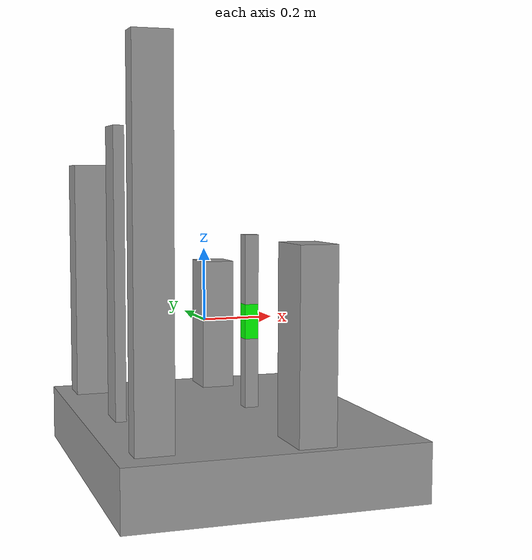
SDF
<?xml version='1.0'?>
<sdf version='1.6'>
  <model name='ur5_camera_scence2'>
    <link name='link_0'>
      <pose frame=''>0.044444 -0.013333 -0.343333 0 -0 0</pose>
      <inertial>
        <mass>1</mass>
        <inertia>
          <ixx>0.166667</ixx>
          <ixy>0</ixy>
          <ixz>0</ixz>
          <iyy>0.166667</iyy>
          <iyz>0</iyz>
          <izz>0.166667</izz>
        </inertia>
        <pose frame=''>0 0 0 0 -0 0</pose>
      </inertial>
      <gravity>1</gravity>
      <self_collide>0</self_collide>
      <kinematic>0</kinematic>
      <visual name='visual'>
        <pose frame=''>0 0 0 0 -0 0</pose>
        <geometry>
          <box>
            <size>0.8 1 0.16</size>
          </box>
        </geometry>
        <material>
          <lighting>1</lighting>
          <script>
            <uri>file://media/materials/scripts/gazebo.material</uri>
            <name>Gazebo/Grey</name>
          </script>
          <ambient>0.3 0.3 0.3 1</ambient>
          <diffuse>0.7 0.7 0.7 1</diffuse>
          <specular>0.01 0.01 0.01 1</specular>
          <emissive>0 0 0 1</emissive>
          <shader type='vertex'>
            <normal_map>__default__</normal_map>
          </shader>
        </material>
        <cast_shadows>1</cast_shadows>
        <transparency>0</transparency>
      </visual>
      <collision name='collision'>
        <laser_retro>0</laser_retro>
        <max_contacts>10</max_contacts>
        <pose frame=''>0 0 0 0 -0 0</pose>
        <geometry>
          <box>
            <size>0.8 1 0.16</size>
          </box>
        </geometry>
        <surface>
          <friction>
            <ode>
              <mu>1</mu>
              <mu2>1</mu2>
              <fdir1>0 0 0</fdir1>
              <slip1>0</slip1>
              <slip2>0</slip2>
            </ode>
            <torsional>
              <coefficient>1</coefficient>
              <patch_radius>0</patch_radius>
              <surface_radius>0</surface_radius>
              <use_patch_radius>1</use_patch_radius>
              <ode>
                <slip>0</slip>
              </ode>
            </torsional>
          </friction>
          <bounce>
            <restitution_coefficient>0</restitution_coefficient>
            <threshold>1e+06</threshold>
          </bounce>
          <contact>
            <collide_without_contact>0</collide_without_contact>
            <collide_without_contact_bitmask>1</collide_without_contact_bitmask>
            <collide_bitmask>1</collide_bitmask>
            <ode>
              <soft_cfm>0</soft_cfm>
              <soft_erp>0.2</soft_erp>
              <kp>1e+13</kp>
              <kd>1</kd>
              <max_vel>0.01</max_vel>
              <min_depth>0</min_depth>
            </ode>
            <bullet>
              <split_impulse>1</split_impulse>
              <split_impulse_penetration_threshold>-0.01</split_impulse_penetration_threshold>
              <soft_cfm>0</soft_cfm>
              <soft_erp>0.2</soft_erp>
              <kp>1e+13</kp>
              <kd>1</kd>
            </bullet>
          </contact>
        </surface>
      </collision>
    </link>
    <link name='link_1'>
      <pose frame=''>-0.255556 -0.413333 0.236667 0 -0 0</pose>
      <inertial>
        <mass>1</mass>
        <inertia>
          <ixx>0.166667</ixx>
          <ixy>0</ixy>
          <ixz>0</ixz>
          <iyy>0.166667</iyy>
          <iyz>0</iyz>
          <izz>0.166667</izz>
        </inertia>
        <pose frame=''>0 0 0 0 -0 0</pose>
      </inertial>
      <gravity>1</gravity>
      <self_collide>0</self_collide>
      <kinematic>0</kinematic>
      <visual name='visual'>
        <pose frame=''>0 0 0 0 -0 0</pose>
        <geometry>
          <box>
            <size>0.1 0.06 1</size>
          </box>
        </geometry>
        <material>
          <lighting>1</lighting>
          <script>
            <uri>file://media/materials/scripts/gazebo.material</uri>
            <name>Gazebo/Grey</name>
          </script>
          <ambient>0.3 0.3 0.3 1</ambient>
          <diffuse>0.7 0.7 0.7 1</diffuse>
          <specular>0.01 0.01 0.01 1</specular>
          <emissive>0 0 0 1</emissive>
          <shader type='vertex'>
            <normal_map>__default__</normal_map>
          </shader>
        </material>
        <cast_shadows>1</cast_shadows>
        <transparency>0</transparency>
      </visual>
      <collision name='collision'>
        <laser_retro>0</laser_retro>
        <max_contacts>10</max_contacts>
        <pose frame=''>0 0 0 0 -0 0</pose>
        <geometry>
          <box>
            <size>0.1 0.06 1</size>
          </box>
        </geometry>
        <surface>
          <friction>
            <ode>
              <mu>1</mu>
              <mu2>1</mu2>
              <fdir1>0 0 0</fdir1>
              <slip1>0</slip1>
              <slip2>0</slip2>
            </ode>
            <torsional>
              <coefficient>1</coefficient>
              <patch_radius>0</patch_radius>
              <surface_radius>0</surface_radius>
              <use_patch_radius>1</use_patch_radius>
              <ode>
                <slip>0</slip>
              </ode>
            </torsional>
          </friction>
          <bounce>
            <restitution_coefficient>0</restitution_coefficient>
            <threshold>1e+06</threshold>
          </bounce>
          <contact>
            <collide_without_contact>0</collide_without_contact>
            <collide_without_contact_bitmask>1</collide_without_contact_bitmask>
            <collide_bitmask>1</collide_bitmask>
            <ode>
              <soft_cfm>0</soft_cfm>
              <soft_erp>0.2</soft_erp>
              <kp>1e+13</kp>
              <kd>1</kd>
              <max_vel>0.01</max_vel>
              <min_depth>0</min_depth>
            </ode>
            <bullet>
              <split_impulse>1</split_impulse>
              <split_impulse_penetration_threshold>-0.01</split_impulse_penetration_threshold>
              <soft_cfm>0</soft_cfm>
              <soft_erp>0.2</soft_erp>
              <kp>1e+13</kp>
              <kd>1</kd>
            </bullet>
          </contact>
        </surface>
      </collision>
    </link>
    <link name='link_2'>
      <pose frame=''>-0.255556 -0.013333 0.136667 0 -0 0</pose>
      <inertial>
        <mass>1</mass>
        <inertia>
          <ixx>0.166667</ixx>
          <ixy>0</ixy>
          <ixz>0</ixz>
          <iyy>0.166667</iyy>
          <iyz>0</iyz>
          <izz>0.166667</izz>
        </inertia>
        <pose frame=''>0 0 0 0 -0 0</pose>
      </inertial>
      <gravity>1</gravity>
      <self_collide>0</self_collide>
      <kinematic>0</kinematic>
      <visual name='visual'>
        <pose frame=''>0 0 0 0 -0 0</pose>
        <geometry>
          <box>
            <size>0.03 0.1 0.8</size>
          </box>
        </geometry>
        <material>
          <lighting>1</lighting>
          <script>
            <uri>file://media/materials/scripts/gazebo.material</uri>
            <name>Gazebo/Grey</name>
          </script>
          <ambient>0.3 0.3 0.3 1</ambient>
          <diffuse>0.7 0.7 0.7 1</diffuse>
          <specular>0.01 0.01 0.01 1</specular>
          <emissive>0 0 0 1</emissive>
          <shader type='vertex'>
            <normal_map>__default__</normal_map>
          </shader>
        </material>
        <cast_shadows>1</cast_shadows>
        <transparency>0</transparency>
      </visual>
      <collision name='collision'>
        <laser_retro>0</laser_retro>
        <max_contacts>10</max_contacts>
        <pose frame=''>0 0 0 0 -0 0</pose>
        <geometry>
          <box>
            <size>0.03 0.1 0.8</size>
          </box>
        </geometry>
        <surface>
          <friction>
            <ode>
              <mu>1</mu>
              <mu2>1</mu2>
              <fdir1>0 0 0</fdir1>
              <slip1>0</slip1>
              <slip2>0</slip2>
            </ode>
            <torsional>
              <coefficient>1</coefficient>
              <patch_radius>0</patch_radius>
              <surface_radius>0</surface_radius>
              <use_patch_radius>1</use_patch_radius>
              <ode>
                <slip>0</slip>
              </ode>
            </torsional>
          </friction>
          <bounce>
            <restitution_coefficient>0</restitution_coefficient>
            <threshold>1e+06</threshold>
          </bounce>
          <contact>
            <collide_without_contact>0</collide_without_contact>
            <collide_without_contact_bitmask>1</collide_without_contact_bitmask>
            <collide_bitmask>1</collide_bitmask>
            <ode>
              <soft_cfm>0</soft_cfm>
              <soft_erp>0.2</soft_erp>
              <kp>1e+13</kp>
              <kd>1</kd>
              <max_vel>0.01</max_vel>
              <min_depth>0</min_depth>
            </ode>
            <bullet>
              <split_impulse>1</split_impulse>
              <split_impulse_penetration_threshold>-0.01</split_impulse_penetration_threshold>
              <soft_cfm>0</soft_cfm>
              <soft_erp>0.2</soft_erp>
              <kp>1e+13</kp>
              <kd>1</kd>
            </bullet>
          </contact>
        </surface>
      </collision>
    </link>
    <link name='link_3'>
      <pose frame=''>-0.255556 0.386667 0.086667 0 -0 0</pose>
      <inertial>
        <mass>1</mass>
        <inertia>
          <ixx>0.166667</ixx>
          <ixy>0</ixy>
          <ixz>0</ixz>
          <iyy>0.166667</iyy>
          <iyz>0</iyz>
          <izz>0.166667</izz>
        </inertia>
        <pose frame=''>0 0 0 0 -0 0</pose>
      </inertial>
      <gravity>1</gravity>
      <self_collide>0</self_collide>
      <kinematic>0</kinematic>
      <visual name='visual'>
        <pose frame=''>0 0 0 0 -0 0</pose>
        <geometry>
          <box>
            <size>0.1 0.1 0.7</size>
          </box>
        </geometry>
        <material>
          <lighting>1</lighting>
          <script>
            <uri>file://media/materials/scripts/gazebo.material</uri>
            <name>Gazebo/Grey</name>
          </script>
          <ambient>0.3 0.3 0.3 1</ambient>
          <diffuse>0.7 0.7 0.7 1</diffuse>
          <specular>0.01 0.01 0.01 1</specular>
          <emissive>0 0 0 1</emissive>
          <shader type='vertex'>
            <normal_map>__default__</normal_map>
          </shader>
        </material>
        <cast_shadows>1</cast_shadows>
        <transparency>0</transparency>
      </visual>
      <collision name='collision'>
        <laser_retro>0</laser_retro>
        <max_contacts>10</max_contacts>
        <pose frame=''>0 0 0 0 -0 0</pose>
        <geometry>
          <box>
            <size>0.1 0.1 0.7</size>
          </box>
        </geometry>
        <surface>
          <friction>
            <ode>
              <mu>1</mu>
              <mu2>1</mu2>
              <fdir1>0 0 0</fdir1>
              <slip1>0</slip1>
              <slip2>0</slip2>
            </ode>
            <torsional>
              <coefficient>1</coefficient>
              <patch_radius>0</patch_radius>
              <surface_radius>0</surface_radius>
              <use_patch_radius>1</use_patch_radius>
              <ode>
                <slip>0</slip>
              </ode>
            </torsional>
          </friction>
          <bounce>
            <restitution_coefficient>0</restitution_coefficient>
            <threshold>1e+06</threshold>
          </bounce>
          <contact>
            <collide_without_contact>0</collide_without_contact>
            <collide_without_contact_bitmask>1</collide_without_contact_bitmask>
            <collide_bitmask>1</collide_bitmask>
            <ode>
              <soft_cfm>0</soft_cfm>
              <soft_erp>0.2</soft_erp>
              <kp>1e+13</kp>
              <kd>1</kd>
              <max_vel>0.01</max_vel>
              <min_depth>0</min_depth>
            </ode>
            <bullet>
              <split_impulse>1</split_impulse>
              <split_impulse_penetration_threshold>-0.01</split_impulse_penetration_threshold>
              <soft_cfm>0</soft_cfm>
              <soft_erp>0.2</soft_erp>
              <kp>1e+13</kp>
              <kd>1</kd>
            </bullet>
          </contact>
        </surface>
      </collision>
    </link>
    <link name='link_4'>
      <pose frame=''>0.144444 -0.413333 -0.013333 0 -0 0</pose>
      <inertial>
        <mass>1</mass>
        <inertia>
          <ixx>0.166667</ixx>
          <ixy>0</ixy>
          <ixz>0</ixz>
          <iyy>0.166667</iyy>
          <iyz>0</iyz>
          <izz>0.166667</izz>
        </inertia>
        <pose frame=''>0 0 0 0 -0 0</pose>
      </inertial>
      <gravity>1</gravity>
      <self_collide>0</self_collide>
      <kinematic>0</kinematic>
      <visual name='visual'>
        <pose frame=''>0 0 0 0 -0 0</pose>
        <geometry>
          <box>
            <size>0.1 0.15 0.5</size>
          </box>
        </geometry>
        <material>
          <lighting>1</lighting>
          <script>
            <uri>file://media/materials/scripts/gazebo.material</uri>
            <name>Gazebo/Grey</name>
          </script>
          <ambient>0.3 0.3 0.3 1</ambient>
          <diffuse>0.7 0.7 0.7 1</diffuse>
          <specular>0.01 0.01 0.01 1</specular>
          <emissive>0 0 0 1</emissive>
          <shader type='vertex'>
            <normal_map>__default__</normal_map>
          </shader>
        </material>
        <cast_shadows>1</cast_shadows>
        <transparency>0</transparency>
      </visual>
      <collision name='collision'>
        <laser_retro>0</laser_retro>
        <max_contacts>10</max_contacts>
        <pose frame=''>0 0 0 0 -0 0</pose>
        <geometry>
          <box>
            <size>0.1 0.15 0.5</size>
          </box>
        </geometry>
        <surface>
          <friction>
            <ode>
              <mu>1</mu>
              <mu2>1</mu2>
              <fdir1>0 0 0</fdir1>
              <slip1>0</slip1>
              <slip2>0</slip2>
            </ode>
            <torsional>
              <coefficient>1</coefficient>
              <patch_radius>0</patch_radius>
              <surface_radius>0</surface_radius>
              <use_patch_radius>1</use_patch_radius>
              <ode>
                <slip>0</slip>
              </ode>
            </torsional>
          </friction>
          <bounce>
            <restitution_coefficient>0</restitution_coefficient>
            <threshold>1e+06</threshold>
          </bounce>
          <contact>
            <collide_without_contact>0</collide_without_contact>
            <collide_without_contact_bitmask>1</collide_without_contact_bitmask>
            <collide_bitmask>1</collide_bitmask>
            <ode>
              <soft_cfm>0</soft_cfm>
              <soft_erp>0.2</soft_erp>
              <kp>1e+13</kp>
              <kd>1</kd>
              <max_vel>0.01</max_vel>
              <min_depth>0</min_depth>
            </ode>
            <bullet>
              <split_impulse>1</split_impulse>
              <split_impulse_penetration_threshold>-0.01</split_impulse_penetration_threshold>
              <soft_cfm>0</soft_cfm>
              <soft_erp>0.2</soft_erp>
              <kp>1e+13</kp>
              <kd>1</kd>
            </bullet>
          </contact>
        </surface>
      </collision>
    </link>
    <link name='link_6'>
      <pose frame=''>0.144444 0.386667 -0.063333 0 -0 0</pose>
      <inertial>
        <mass>1</mass>
        <inertia>
          <ixx>0.166667</ixx>
          <ixy>0</ixy>
          <ixz>0</ixz>
          <iyy>0.166667</iyy>
          <iyz>0</iyz>
          <izz>0.166667</izz>
        </inertia>
        <pose frame=''>0 0 0 0 -0 0</pose>
      </inertial>
      <gravity>1</gravity>
      <self_collide>0</self_collide>
      <kinematic>0</kinematic>
      <visual name='visual'>
        <pose frame=''>0 0 0 0 -0 0</pose>
        <geometry>
          <box>
            <size>0.1 0.12 0.4</size>
          </box>
        </geometry>
        <material>
          <lighting>1</lighting>
          <script>
            <uri>file://media/materials/scripts/gazebo.material</uri>
            <name>Gazebo/Grey</name>
          </script>
          <ambient>0.3 0.3 0.3 1</ambient>
          <diffuse>0.7 0.7 0.7 1</diffuse>
          <specular>0.01 0.01 0.01 1</specular>
          <emissive>0 0 0 1</emissive>
          <shader type='vertex'>
            <normal_map>__default__</normal_map>
          </shader>
        </material>
        <cast_shadows>1</cast_shadows>
        <transparency>0</transparency>
      </visual>
      <collision name='collision'>
        <laser_retro>0</laser_retro>
        <max_contacts>10</max_contacts>
        <pose frame=''>0 0 0 0 -0 0</pose>
        <geometry>
          <box>
            <size>0.1 0.12 0.4</size>
          </box>
        </geometry>
        <surface>
          <friction>
            <ode>
              <mu>1</mu>
              <mu2>1</mu2>
              <fdir1>0 0 0</fdir1>
              <slip1>0</slip1>
              <slip2>0</slip2>
            </ode>
            <torsional>
              <coefficient>1</coefficient>
              <patch_radius>0</patch_radius>
              <surface_radius>0</surface_radius>
              <use_patch_radius>1</use_patch_radius>
              <ode>
                <slip>0</slip>
              </ode>
            </torsional>
          </friction>
          <bounce>
            <restitution_coefficient>0</restitution_coefficient>
            <threshold>1e+06</threshold>
          </bounce>
          <contact>
            <collide_without_contact>0</collide_without_contact>
            <collide_without_contact_bitmask>1</collide_without_contact_bitmask>
            <collide_bitmask>1</collide_bitmask>
            <ode>
              <soft_cfm>0</soft_cfm>
              <soft_erp>0.2</soft_erp>
              <kp>1e+13</kp>
              <kd>1</kd>
              <max_vel>0.01</max_vel>
              <min_depth>0</min_depth>
            </ode>
            <bullet>
              <split_impulse>1</split_impulse>
              <split_impulse_penetration_threshold>-0.01</split_impulse_penetration_threshold>
              <soft_cfm>0</soft_cfm>
              <soft_erp>0.2</soft_erp>
              <kp>1e+13</kp>
              <kd>1</kd>
            </bullet>
          </contact>
        </surface>
      </collision>
    </link>
    <link name='link_7'>
      <pose frame=''>0.144444 0.026667 -0.163333 0 -0 0</pose>
      <inertial>
        <mass>1</mass>
        <inertia>
          <ixx>0.166667</ixx>
          <ixy>0</ixy>
          <ixz>0</ixz>
          <iyy>0.166667</iyy>
          <iyz>0</iyz>
          <izz>0.166667</izz>
        </inertia>
        <pose frame=''>0 0 0 0 -0 0</pose>
      </inertial>
      <gravity>1</gravity>
      <self_collide>0</self_collide>
      <kinematic>0</kinematic>
      <visual name='visual'>
        <pose frame=''>0 0 0 0 -0 0</pose>
        <geometry>
          <box>
            <size>0.04 0.04 0.2</size>
          </box>
        </geometry>
        <material>
          <lighting>1</lighting>
          <script>
            <uri>file://media/materials/scripts/gazebo.material</uri>
            <name>Gazebo/Grey</name>
          </script>
          <ambient>0.3 0.3 0.3 1</ambient>
          <diffuse>0.7 0.7 0.7 1</diffuse>
          <specular>0.01 0.01 0.01 1</specular>
          <emissive>0 0 0 1</emissive>
          <shader type='vertex'>
            <normal_map>__default__</normal_map>
          </shader>
        </material>
        <cast_shadows>1</cast_shadows>
        <transparency>0</transparency>
      </visual>
      <collision name='collision'>
        <laser_retro>0</laser_retro>
        <max_contacts>10</max_contacts>
        <pose frame=''>0 0 0 0 -0 0</pose>
        <geometry>
          <box>
            <size>0.04 0.04 0.2</size>
          </box>
        </geometry>
        <surface>
          <friction>
            <ode>
              <mu>1</mu>
              <mu2>1</mu2>
              <fdir1>0 0 0</fdir1>
              <slip1>0</slip1>
              <slip2>0</slip2>
            </ode>
            <torsional>
              <coefficient>1</coefficient>
              <patch_radius>0</patch_radius>
              <surface_radius>0</surface_radius>
              <use_patch_radius>1</use_patch_radius>
              <ode>
                <slip>0</slip>
              </ode>
            </torsional>
          </friction>
          <bounce>
            <restitution_coefficient>0</restitution_coefficient>
            <threshold>1e+06</threshold>
          </bounce>
          <contact>
            <collide_without_contact>0</collide_without_contact>
            <collide_without_contact_bitmask>1</collide_without_contact_bitmask>
            <collide_bitmask>1</collide_bitmask>
            <ode>
              <soft_cfm>0</soft_cfm>
              <soft_erp>0.2</soft_erp>
              <kp>1e+13</kp>
              <kd>1</kd>
              <max_vel>0.01</max_vel>
              <min_depth>0</min_depth>
            </ode>
            <bullet>
              <split_impulse>1</split_impulse>
              <split_impulse_penetration_threshold>-0.01</split_impulse_penetration_threshold>
              <soft_cfm>0</soft_cfm>
              <soft_erp>0.2</soft_erp>
              <kp>1e+13</kp>
              <kd>1</kd>
            </bullet>
          </contact>
        </surface>
      </collision>
    </link>
    <link name='link_8'>
      <pose frame=''>0.144444 0.026667 -0.013333 0 -0 0</pose>
      <inertial>
        <mass>1</mass>
        <inertia>
          <ixx>0.166667</ixx>
          <ixy>0</ixy>
          <ixz>0</ixz>
          <iyy>0.166667</iyy>
          <iyz>0</iyz>
          <izz>0.166667</izz>
        </inertia>
        <pose frame=''>0 0 0 0 -0 0</pose>
      </inertial>
      <gravity>1</gravity>
      <self_collide>0</self_collide>
      <kinematic>0</kinematic>
      <visual name='visual'>
        <pose frame=''>0 0 0 0 -0 0</pose>
        <geometry>
          <box>
            <size>0.04 0.04 0.1</size>
          </box>
        </geometry>
        <material>
          <lighting>1</lighting>
          <script>
            <uri>file://media/materials/scripts/gazebo.material</uri>
            <name>Gazebo/Grey</name>
          </script>
          <ambient>0 1 0 1</ambient>
          <diffuse>0 1 0 1</diffuse>
          <specular>0 1 0 1</specular>
          <emissive>0 0 0 1</emissive>
          <shader type='vertex'>
            <normal_map>__default__</normal_map>
          </shader>
        </material>
        <cast_shadows>1</cast_shadows>
        <transparency>0</transparency>
      </visual>
      <collision name='collision'>
        <laser_retro>0</laser_retro>
        <max_contacts>10</max_contacts>
        <pose frame=''>0 0 0 0 -0 0</pose>
        <geometry>
          <box>
            <size>0.04 0.04 0.1</size>
          </box>
        </geometry>
        <surface>
          <friction>
            <ode>
              <mu>1</mu>
              <mu2>1</mu2>
              <fdir1>0 0 0</fdir1>
              <slip1>0</slip1>
              <slip2>0</slip2>
            </ode>
            <torsional>
              <coefficient>1</coefficient>
              <patch_radius>0</patch_radius>
              <surface_radius>0</surface_radius>
              <use_patch_radius>1</use_patch_radius>
              <ode>
                <slip>0</slip>
              </ode>
            </torsional>
          </friction>
          <bounce>
            <restitution_coefficient>0</restitution_coefficient>
            <threshold>1e+06</threshold>
          </bounce>
          <contact>
            <collide_without_contact>0</collide_without_contact>
            <collide_without_contact_bitmask>1</collide_without_contact_bitmask>
            <collide_bitmask>1</collide_bitmask>
            <ode>
              <soft_cfm>0</soft_cfm>
              <soft_erp>0.2</soft_erp>
              <kp>1e+13</kp>
              <kd>1</kd>
              <max_vel>0.01</max_vel>
              <min_depth>0</min_depth>
            </ode>
            <bullet>
              <split_impulse>1</split_impulse>
              <split_impulse_penetration_threshold>-0.01</split_impulse_penetration_threshold>
              <soft_cfm>0</soft_cfm>
              <soft_erp>0.2</soft_erp>
              <kp>1e+13</kp>
              <kd>1</kd>
            </bullet>
          </contact>
        </surface>
      </collision>
    </link>
    <link name='link_9'>
      <pose frame=''>0.144444 0.026667 0.136667 0 -0 0</pose>
      <inertial>
        <mass>1</mass>
        <inertia>
          <ixx>0.166667</ixx>
          <ixy>0</ixy>
          <ixz>0</ixz>
          <iyy>0.166667</iyy>
          <iyz>0</iyz>
          <izz>0.166667</izz>
        </inertia>
        <pose frame=''>0 0 0 0 -0 0</pose>
      </inertial>
      <gravity>1</gravity>
      <self_collide>0</self_collide>
      <kinematic>0</kinematic>
      <visual name='visual'>
        <pose frame=''>0 0 0 0 -0 0</pose>
        <geometry>
          <box>
            <size>0.04 0.04 0.2</size>
          </box>
        </geometry>
        <material>
          <lighting>1</lighting>
          <script>
            <uri>file://media/materials/scripts/gazebo.material</uri>
            <name>Gazebo/Grey</name>
          </script>
          <ambient>0.3 0.3 0.3 1</ambient>
          <diffuse>0.7 0.7 0.7 1</diffuse>
          <specular>0.01 0.01 0.01 1</specular>
          <emissive>0 0 0 1</emissive>
          <shader type='vertex'>
            <normal_map>__default__</normal_map>
          </shader>
        </material>
        <cast_shadows>1</cast_shadows>
        <transparency>0</transparency>
      </visual>
      <collision name='collision'>
        <laser_retro>0</laser_retro>
        <max_contacts>10</max_contacts>
        <pose frame=''>0 0 0 0 -0 0</pose>
        <geometry>
          <box>
            <size>0.04 0.04 0.2</size>
          </box>
        </geometry>
        <surface>
          <friction>
            <ode>
              <mu>1</mu>
              <mu2>1</mu2>
              <fdir1>0 0 0</fdir1>
              <slip1>0</slip1>
              <slip2>0</slip2>
            </ode>
            <torsional>
              <coefficient>1</coefficient>
              <patch_radius>0</patch_radius>
              <surface_radius>0</surface_radius>
              <use_patch_radius>1</use_patch_radius>
              <ode>
                <slip>0</slip>
              </ode>
            </torsional>
          </friction>
          <bounce>
            <restitution_coefficient>0</restitution_coefficient>
            <threshold>1e+06</threshold>
          </bounce>
          <contact>
            <collide_without_contact>0</collide_without_contact>
            <collide_without_contact_bitmask>1</collide_without_contact_bitmask>
            <collide_bitmask>1</collide_bitmask>
            <ode>
              <soft_cfm>0</soft_cfm>
              <soft_erp>0.2</soft_erp>
              <kp>1e+13</kp>
              <kd>1</kd>
              <max_vel>0.01</max_vel>
              <min_depth>0</min_depth>
            </ode>
            <bullet>
              <split_impulse>1</split_impulse>
              <split_impulse_penetration_threshold>-0.01</split_impulse_penetration_threshold>
              <soft_cfm>0</soft_cfm>
              <soft_erp>0.2</soft_erp>
              <kp>1e+13</kp>
              <kd>1</kd>
            </bullet>
          </contact>
        </surface>
      </collision>
    </link>
    <joint name='link_0_JOINT_0' type='fixed'>
      <parent>link_0</parent>
      <child>link_4</child>
      <pose frame=''>0 0 0 0 -0 0</pose>
      <physics>
        <ode>
          <limit>
            <cfm>0</cfm>
            <erp>0.2</erp>
          </limit>
          <suspension>
            <cfm>0</cfm>
            <erp>0.2</erp>
          </suspension>
        </ode>
      </physics>
    </joint>
    <joint name='link_0_JOINT_1' type='fixed'>
      <parent>link_0</parent>
      <child>link_1</child>
      <pose frame=''>0 0 0 0 -0 0</pose>
      <physics>
        <ode>
          <limit>
            <cfm>0</cfm>
            <erp>0.2</erp>
          </limit>
          <suspension>
            <cfm>0</cfm>
            <erp>0.2</erp>
          </suspension>
        </ode>
      </physics>
    </joint>
    <joint name='link_0_JOINT_2' type='fixed'>
      <parent>link_0</parent>
      <child>link_7</child>
      <pose frame=''>0 0 0 0 -0 0</pose>
      <physics>
        <ode>
          <limit>
            <cfm>0</cfm>
            <erp>0.2</erp>
          </limit>
          <suspension>
            <cfm>0</cfm>
            <erp>0.2</erp>
          </suspension>
        </ode>
      </physics>
    </joint>
    <joint name='link_0_JOINT_3' type='fixed'>
      <parent>link_0</parent>
      <child>link_2</child>
      <pose frame=''>0 0 0 0 -0 0</pose>
      <physics>
        <ode>
          <limit>
            <cfm>0</cfm>
            <erp>0.2</erp>
          </limit>
          <suspension>
            <cfm>0</cfm>
            <erp>0.2</erp>
          </suspension>
        </ode>
      </physics>
    </joint>
    <joint name='link_0_JOINT_4' type='fixed'>
      <parent>link_0</parent>
      <child>link_3</child>
      <pose frame=''>0 0 0 0 -0 0</pose>
      <physics>
        <ode>
          <limit>
            <cfm>0</cfm>
            <erp>0.2</erp>
          </limit>
          <suspension>
            <cfm>0</cfm>
            <erp>0.2</erp>
          </suspension>
        </ode>
      </physics>
    </joint>
    <joint name='link_0_JOINT_5' type='fixed'>
      <parent>link_0</parent>
      <child>link_6</child>
      <pose frame=''>0 0 0 0 -0 0</pose>
      <physics>
        <ode>
          <limit>
            <cfm>0</cfm>
            <erp>0.2</erp>
          </limit>
          <suspension>
            <cfm>0</cfm>
            <erp>0.2</erp>
          </suspension>
        </ode>
      </physics>
    </joint>
    <joint name='link_7_JOINT_6' type='fixed'>
      <parent>link_7</parent>
      <child>link_8</child>
      <pose frame=''>0 0 0 0 -0 0</pose>
      <physics>
        <ode>
          <limit>
            <cfm>0</cfm>
            <erp>0.2</erp>
          </limit>
          <suspension>
            <cfm>0</cfm>
            <erp>0.2</erp>
          </suspension>
        </ode>
      </physics>
    </joint>
    <joint name='link_8_JOINT_7' type='fixed'>
      <parent>link_8</parent>
      <child>link_9</child>
      <pose frame=''>0 0 0 0 -0 0</pose>
      <physics>
        <ode>
          <limit>
            <cfm>0</cfm>
            <erp>0.2</erp>
          </limit>
          <suspension>
            <cfm>0</cfm>
            <erp>0.2</erp>
          </suspension>
        </ode>
      </physics>
    </joint>
    <static>0</static>
    <allow_auto_disable>1</allow_auto_disable>
  </model>
</sdf>
